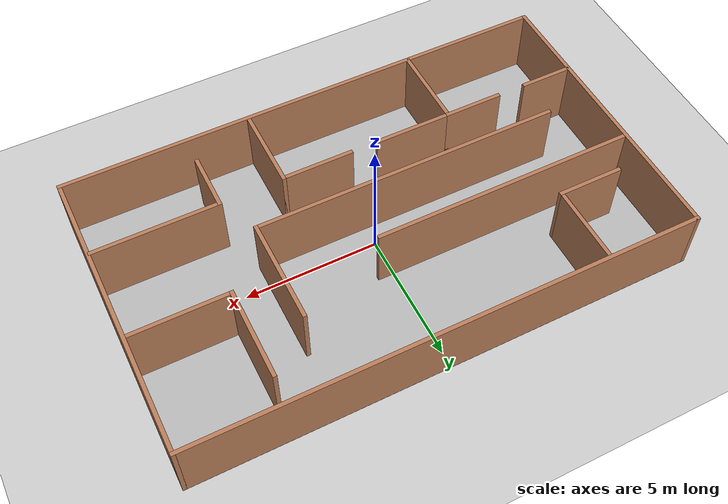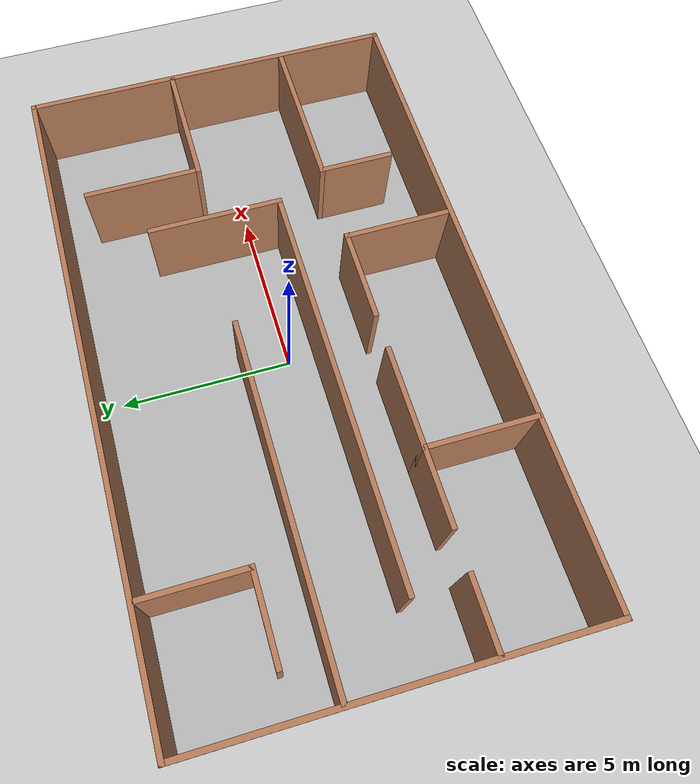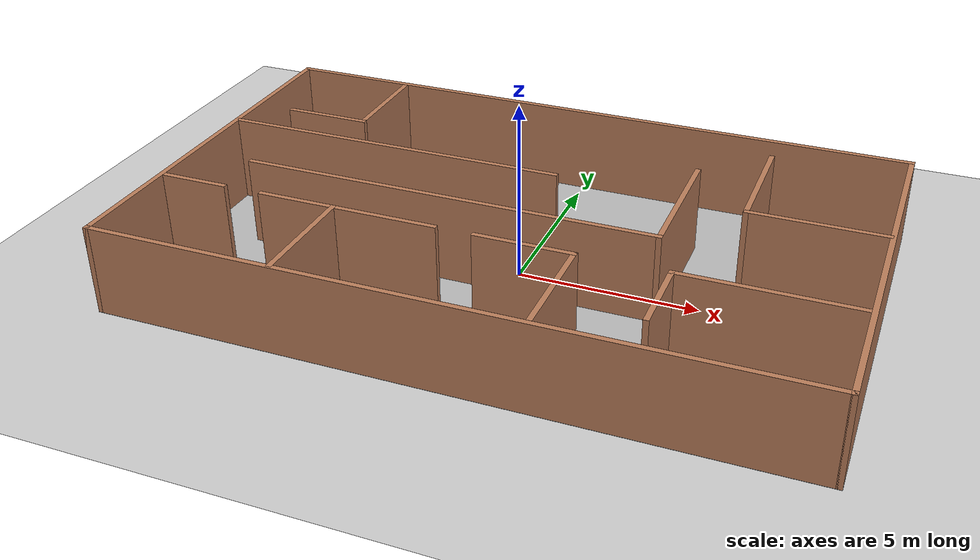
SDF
<sdf version="1.6">
 <world name="default">
  <light name="sun" type="directional">
   <pose>0 0 10 0 -0 0</pose>
   <diffuse>0.8 0.8 0.8 1</diffuse>
   <specular>0.2 0.2 0.2 1</specular>
   <attenuation>
    <range>1000</range>
    <constant>0.9</constant>
    <linear>0.01</linear>
    <quadratic>0.001</quadratic>
   </attenuation>
   <direction>-0.5 0.1 -0.9</direction>
  </light>
  <model name="ground_plane">
   <static>1</static>
   <link name="link">
    <collision name="collision">
     <geometry><plane><normal>0 0 1</normal><size>100 100</size></plane></geometry>
     <surface><friction><ode><mu>100</mu><mu2>50</mu2></ode></friction></surface>
    </collision>
    <visual name="visual">
     <cast_shadows>0</cast_shadows>
     <geometry><plane><normal>0 0 1</normal><size>100 100</size></plane></geometry>
     <material>
      <script><uri>file://media/materials/scripts/gazebo.material</uri><name>Gazebo/Gray</name></script>
     </material>
    </visual>
   </link>
  </model>
  <gravity>0 0 -9.8</gravity>
  <magnetic_field>6e-06 2.3e-05 -4.2e-05</magnetic_field>
  <atmosphere type="adiabatic"/>
  <physics name="default_physics" default="0" type="ode">
   <max_step_size>0.001</max_step_size>
   <real_time_factor>1</real_time_factor>
   <real_time_update_rate>1000</real_time_update_rate>
  </physics>
  <scene><ambient>0.4 0.4 0.4 1</ambient><background>0.7 0.7 0.7 1</background><shadows>1</shadows></scene>
  <audio><device>default</device></audio>
  <spherical_coordinates>
   <surface_model>EARTH_WGS84</surface_model>
   <latitude_deg>0</latitude_deg>
   <longitude_deg>0</longitude_deg>
   <elevation>0</elevation>
   <heading_deg>0</heading_deg>
  </spherical_coordinates>
  <model name="Textured_Walls">
   <pose>-0.000632 -6.2e-05 0 0 -0 0</pose>
   <link name="Wall_0">
    <collision name="Wall_0_Collision">
     <geometry><box><size>19 0.15 2.5</size></box></geometry>
     <pose>0 0 1.25 0 -0 0</pose>
    </collision>
    <visual name="Wall_0_Visual">
     <pose>0 0 1.25 0 -0 0</pose>
     <geometry><box><size>19 0.15 2.5</size></box></geometry>
     <material>
      <script>
       <uri>model://Textured_Walls/materials/scripts</uri>
       <uri>model://Textured_Walls/materials/textures</uri>
       <name>outside_wallMat/Diffuse</name>
      </script>
      <ambient>0.7254 0.4902 0.3529 1</ambient>
     </material>
     <meta><layer>0</layer></meta>
    </visual>
    <pose>0 5.55 0 0 -0 0</pose>
   </link>
   <link name="Wall_10">
    <collision name="Wall_10_Collision">
     <geometry><box><size>2.5 0.15 2.5</size></box></geometry>
     <pose>0 0 1.25 0 -0 0</pose>
    </collision>
    <visual name="Wall_10_Visual">
     <pose>0 0 1.25 0 -0 0</pose>
     <geometry><box><size>2.5 0.15 2.5</size></box></geometry>
     <material>
      <script>
       <uri>model://Textured_Walls/materials/scripts</uri>
       <uri>model://Textured_Walls/materials/textures</uri>
       <name>wallMat/Diffuse</name>
      </script>
      <ambient>0.7254 0.4902 0.3529 1</ambient>
     </material>
     <meta><layer>0</layer></meta>
    </visual>
    <pose>-7.08543 2.57447 0 0 -0 3.14159</pose>
   </link>
   <link name="Wall_12">
    <collision name="Wall_12_Collision">
     <geometry><box><size>10 0.15 2.5</size></box></geometry>
     <pose>0 0 1.25 0 -0 0</pose>
    </collision>
    <visual name="Wall_12_Visual">
     <pose>0 0 1.25 0 -0 0</pose>
     <geometry><box><size>10 0.15 2.5</size></box></geometry>
     <material>
      <script>
       <uri>model://Textured_Walls/materials/scripts</uri>
       <uri>model://Textured_Walls/materials/textures</uri>
       <name>outside_wallMat/Diffuse</name>
      </script>
      <ambient>0.7254 0.4902 0.3529 1</ambient>
     </material>
     <meta><layer>0</layer></meta>
    </visual>
    <pose>-4.42153 1.36608 0 0 -0 0</pose>
   </link>
   <link name="Wall_14">
    <collision name="Wall_14_Collision">
     <geometry><box><size>11.75 0.15 2.5</size></box></geometry>
     <pose>0 0 1.25 0 -0 0</pose>
    </collision>
    <visual name="Wall_14_Visual">
     <pose>0 0 1.25 0 -0 0</pose>
     <geometry><box><size>11.75 0.15 2.5</size></box></geometry>
     <material>
      <script>
       <uri>model://Textured_Walls/materials/scripts</uri>
       <uri>model://Textured_Walls/materials/textures</uri>
       <name>outside_wallMat/Diffuse</name>
      </script>
      <ambient>0.7254 0.4902 0.3529 1</ambient>
     </material>
     <meta><layer>0</layer></meta>
    </visual>
    <pose>-1.76084 -0.852506 0 0 -0 0</pose>
   </link>
   <link name="Wall_17">
    <collision name="Wall_17_Collision">
     <geometry><box><size>2 0.15 2.5</size></box></geometry>
     <pose>0 0 1.25 0 -0 0</pose>
    </collision>
    <visual name="Wall_17_Visual">
     <pose>0 0 1.25 0 -0 0</pose>
     <geometry><box><size>2 0.15 2.5</size></box></geometry>
     <material>
      <script>
       <uri>model://Textured_Walls/materials/scripts</uri>
       <uri>model://Textured_Walls/materials/textures</uri>
       <name>wallMat/Diffuse</name>
      </script>
      <ambient>0.7254 0.4902 0.3529 1</ambient>
     </material>
     <meta><layer>0</layer></meta>
    </visual>
    <pose>-8.42153 -2.39469 0 0 -0 0</pose>
   </link>
   <link name="Wall_19">
    <collision name="Wall_19_Collision">
     <geometry><box><size>2.25 0.15 2.5</size></box></geometry>
     <pose>0 0 1.25 0 -0 0</pose>
    </collision>
    <visual name="Wall_19_Visual">
     <pose>0 0 1.25 0 -0 0</pose>
     <geometry><box><size>2.25 0.15 2.5</size></box></geometry>
     <material>
      <script>
       <uri>model://Textured_Walls/materials/scripts</uri>
       <uri>model://Textured_Walls/materials/textures</uri>
       <name>wallMat/Diffuse</name>
      </script>
      <ambient>0.7254 0.4902 0.3529 1</ambient>
     </material>
     <meta><layer>0</layer></meta>
    </visual>
    <pose>-5.26627 -2.39469 0 0 -0 0</pose>
   </link>
   <link name="Wall_20">
    <collision name="Wall_20_Collision">
     <geometry><box><size>3.25 0.15 2.5</size></box></geometry>
     <pose>0 0 1.25 0 -0 0</pose>
    </collision>
    <visual name="Wall_20_Visual">
     <pose>0 0 1.25 0 -0 0</pose>
     <geometry><box><size>3.25 0.15 2.5</size></box></geometry>
     <material>
      <script>
       <uri>model://Textured_Walls/materials/scripts</uri>
       <uri>model://Textured_Walls/materials/textures</uri>
       <name>wallMat/Diffuse</name>
      </script>
      <ambient>0.7254 0.4902 0.3529 1</ambient>
     </material>
     <meta><layer>0</layer></meta>
    </visual>
    <pose>-4.21627 -3.94469 0 0 -0 -1.5708</pose>
   </link>
   <link name="Wall_22">
    <collision name="Wall_22_Collision">
     <geometry><box><size>3 0.15 2.5</size></box></geometry>
     <pose>0 0 1.25 0 -0 0</pose>
    </collision>
    <visual name="Wall_22_Visual">
     <pose>0 0 1.25 0 -0 0</pose>
     <geometry><box><size>3 0.15 2.5</size></box></geometry>
     <material>
      <script>
       <uri>model://Textured_Walls/materials/scripts</uri>
       <uri>model://Textured_Walls/materials/textures</uri>
       <name>wallMat/Diffuse</name>
      </script>
      <ambient>0.7254 0.4902 0.3529 1</ambient>
     </material>
     <meta><layer>0</layer></meta>
    </visual>
    <pose>-2.79127 -2.39469 0 0 -0 0</pose>
   </link>
   <link name="Wall_24">
    <collision name="Wall_24_Collision">
     <geometry><box><size>2.75 0.15 2.5</size></box></geometry>
     <pose>0 0 1.25 0 -0 0</pose>
    </collision>
    <visual name="Wall_24_Visual">
     <pose>0 0 1.25 0 -0 0</pose>
     <geometry><box><size>2.75 0.15 2.5</size></box></geometry>
     <material>
      <script>
       <uri>model://Textured_Walls/materials/scripts</uri>
       <uri>model://Textured_Walls/materials/textures</uri>
       <name>wallMat/Diffuse</name>
      </script>
      <ambient>0.7254 0.4902 0.3529 1</ambient>
     </material>
     <meta><layer>0</layer></meta>
    </visual>
    <pose>1.04426 -2.39469 0 0 -0 0</pose>
   </link>
   <link name="Wall_25">
    <collision name="Wall_25_Collision">
     <geometry><box><size>3.25 0.15 2.5</size></box></geometry>
     <pose>0 0 1.25 0 -0 0</pose>
    </collision>
    <visual name="Wall_25_Visual">
     <pose>0 0 1.25 0 -0 0</pose>
     <geometry><box><size>3.25 0.15 2.5</size></box></geometry>
     <material>
      <script>
       <uri>model://Textured_Walls/materials/scripts</uri>
       <uri>model://Textured_Walls/materials/textures</uri>
       <name>wallMat/Diffuse</name>
      </script>
      <ambient>0.7254 0.4902 0.3529 1</ambient>
     </material>
     <meta><layer>0</layer></meta>
    </visual>
    <pose>2.34426 -3.94469 0 0 -0 -1.5708</pose>
   </link>
   <link name="Wall_27">
    <collision name="Wall_27_Collision">
     <geometry><box><size>4.75 0.15 2.5</size></box></geometry>
     <pose>0 0 1.25 0 -0 0</pose>
    </collision>
    <visual name="Wall_27_Visual">
     <pose>0 0 1.25 0 -0 0</pose>
     <geometry><box><size>4.75 0.15 2.5</size></box></geometry>
     <material>
      <script>
       <uri>model://Textured_Walls/materials/scripts</uri>
       <uri>model://Textured_Walls/materials/textures</uri>
       <name>wallMat/Diffuse</name>
      </script>
      <ambient>0.7254 0.4902 0.3529 1</ambient>
     </material>
     <meta><layer>0</layer></meta>
    </visual>
    <pose>7.04912 -2.36764 0 0 -0 3.14159</pose>
   </link>
   <link name="Wall_28">
    <collision name="Wall_28_Collision">
     <geometry><box><size>2.25 0.15 2.5</size></box></geometry>
     <pose>0 0 1.25 0 -0 0</pose>
    </collision>
    <visual name="Wall_28_Visual">
     <pose>0 0 1.25 0 -0 0</pose>
     <geometry><box><size>2.25 0.15 2.5</size></box></geometry>
     <material>
      <script>
       <uri>model://Textured_Walls/materials/scripts</uri>
       <uri>model://Textured_Walls/materials/textures</uri>
       <name>wallMat/Diffuse</name>
      </script>
      <ambient>0.7254 0.4902 0.3529 1</ambient>
     </material>
     <meta><layer>0</layer></meta>
    </visual>
    <pose>4.74912 -3.41764 0 0 -0 -1.5708</pose>
   </link>
   <link name="Wall_30">
    <collision name="Wall_30_Collision">
     <geometry><box><size>3.75 0.15 2.5</size></box></geometry>
     <pose>0 0 1.25 0 -0 0</pose>
    </collision>
    <visual name="Wall_30_Visual">
     <pose>0 0 1.25 0 -0 0</pose>
     <geometry><box><size>3.75 0.15 2.5</size></box></geometry>
     <material>
      <script>
       <uri>model://Textured_Walls/materials/scripts</uri>
       <uri>model://Textured_Walls/materials/textures</uri>
       <name>wallMat/Diffuse</name>
      </script>
      <ambient>0.7254 0.4902 0.3529 1</ambient>
     </material>
     <meta><layer>0</layer></meta>
    </visual>
    <pose>7.55475 1.1822 0 0 -0 3.14159</pose>
   </link>
   <link name="Wall_31">
    <collision name="Wall_31_Collision">
     <geometry><box><size>3.5 0.15 2.5</size></box></geometry>
     <pose>0 0 1.25 0 -0 0</pose>
    </collision>
    <visual name="Wall_31_Visual">
     <pose>0 0 1.25 0 -0 0</pose>
     <geometry><box><size>3.5 0.15 2.5</size></box></geometry>
     <material>
      <script>
       <uri>model://Textured_Walls/materials/scripts</uri>
       <uri>model://Textured_Walls/materials/textures</uri>
       <name>wallMat/Diffuse</name>
      </script>
      <ambient>0.7254 0.4902 0.3529 1</ambient>
     </material>
     <meta><layer>0</layer></meta>
    </visual>
    <pose>5.75475 2.8572 0 0 -0 1.5708</pose>
   </link>
   <link name="Wall_33">
    <collision name="Wall_33_Collision">
     <geometry><box><size>4 0.15 2.5</size></box></geometry>
     <pose>0 0 1.25 0 -0 0</pose>
    </collision>
    <visual name="Wall_33_Visual">
     <pose>0 0 1.25 0 -0 0</pose>
     <geometry><box><size>4 0.15 2.5</size></box></geometry>
     <material>
      <script>
       <uri>model://Textured_Walls/materials/scripts</uri>
       <uri>model://Textured_Walls/materials/textures</uri>
       <name>wallMat/Diffuse</name>
      </script>
      <ambient>0.7254 0.4902 0.3529 1</ambient>
     </material>
     <meta><layer>0</layer></meta>
    </visual>
    <pose>4.03916 1.07249 0 0 -0 1.5708</pose>
   </link>
   <link name="Wall_4">
    <collision name="Wall_4_Collision">
     <geometry><box><size>11.25 0.15 2.5</size></box></geometry>
     <pose>0 0 1.25 0 -0 0</pose>
    </collision>
    <visual name="Wall_4_Visual">
     <pose>0 0 1.25 0 -0 0</pose>
     <geometry><box><size>11.25 0.15 2.5</size></box></geometry>
     <material>
      <script>
       <uri>model://Textured_Walls/materials/scripts</uri>
       <uri>model://Textured_Walls/materials/textures</uri>
       <name>outside_wallMat/Diffuse</name>
      </script>
      <ambient>0.7254 0.4902 0.3529 1</ambient>
     </material>
     <meta><layer>0</layer></meta>
    </visual>
    <pose>-9.425 -0 0 0 -0 -1.5708</pose>
   </link>
   <link name="Wall_5">
    <collision name="Wall_5_Collision">
     <geometry><box><size>19 0.15 2.5</size></box></geometry>
     <pose>0 0 1.25 0 -0 0</pose>
    </collision>
    <visual name="Wall_5_Visual">
     <pose>0 0 1.25 0 -0 0</pose>
     <geometry><box><size>19 0.15 2.5</size></box></geometry>
     <material>
      <script>
       <uri>model://Textured_Walls/materials/scripts</uri>
       <uri>model://Textured_Walls/materials/textures</uri>
       <name>outside_wallMat/Diffuse</name>
      </script>
      <ambient>0.7254 0.4902 0.3529 1</ambient>
     </material>
     <meta><layer>0</layer></meta>
    </visual>
    <pose>0 -5.55 0 0 -0 0</pose>
   </link>
   <link name="Wall_6">
    <collision name="Wall_6_Collision">
     <geometry><box><size>11.25 0.15 2.5</size></box></geometry>
     <pose>0 0 1.25 0 -0 0</pose>
    </collision>
    <visual name="Wall_6_Visual">
     <pose>0 0 1.25 0 -0 0</pose>
     <geometry><box><size>11.25 0.15 2.5</size></box></geometry>
     <material>
      <script>
       <uri>model://Textured_Walls/materials/scripts</uri>
       <uri>model://Textured_Walls/materials/textures</uri>
       <name>outside_wallMat/Diffuse</name>
      </script>
      <ambient>0.7254 0.4902 0.3529 1</ambient>
     </material>
     <meta><layer>0</layer></meta>
    </visual>
    <pose>9.425 -0 0 0 -0 1.5708</pose>
   </link>
   <link name="Wall_9">
    <collision name="Wall_9_Collision">
     <geometry><box><size>3 0.15 2.5</size></box></geometry>
     <pose>0 0 1.25 0 -0 0</pose>
    </collision>
    <visual name="Wall_9_Visual">
     <pose>0 0 1.25 0 -0 0</pose>
     <geometry><box><size>3 0.15 2.5</size></box></geometry>
     <material>
      <script>
       <uri>model://Textured_Walls/materials/scripts</uri>
       <uri>model://Textured_Walls/materials/textures</uri>
       <name>wallMat/Diffuse</name>
      </script>
      <ambient>0.7254 0.4902 0.3529 1</ambient>
     </material>
     <meta><layer>0</layer></meta>
    </visual>
    <pose>-5.91043 3.99947 0 0 -0 -1.5708</pose>
   </link>
   <static>1</static>
  </model>
  <model name="Textured_Floor">
   <static>1</static>
   <link name="link">
    <collision name="collision">
     <geometry><box><size>19 11.25 0.01</size></box></geometry>
     <surface><friction><ode><mu>100</mu><mu2>50</mu2></ode></friction></surface>
    </collision>
    <visual name="visual">
     <cast_shadows>0</cast_shadows>
     <geometry><box><size>19 11.25 0.01</size></box></geometry>
     <material>
      <script>
       <uri>model://Textured_Floor/materials/scripts</uri>
       <uri>model://Textured_Floor/materials/textures</uri>
       <name>floorMat/Diffuse</name>
      </script>
     </material>
    </visual>
   </link>
   <pose>0.000228 6.9e-05 0 0 -0 0</pose>
  </model>
 </world>
</sdf>
